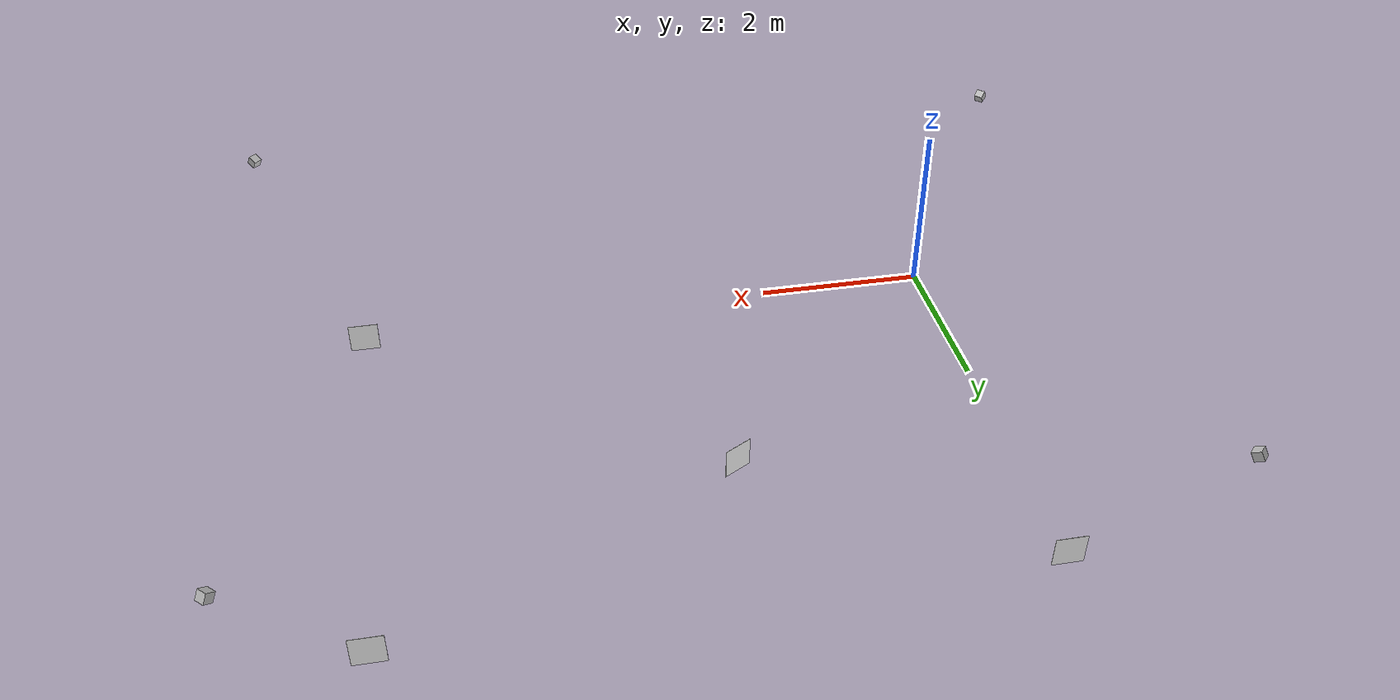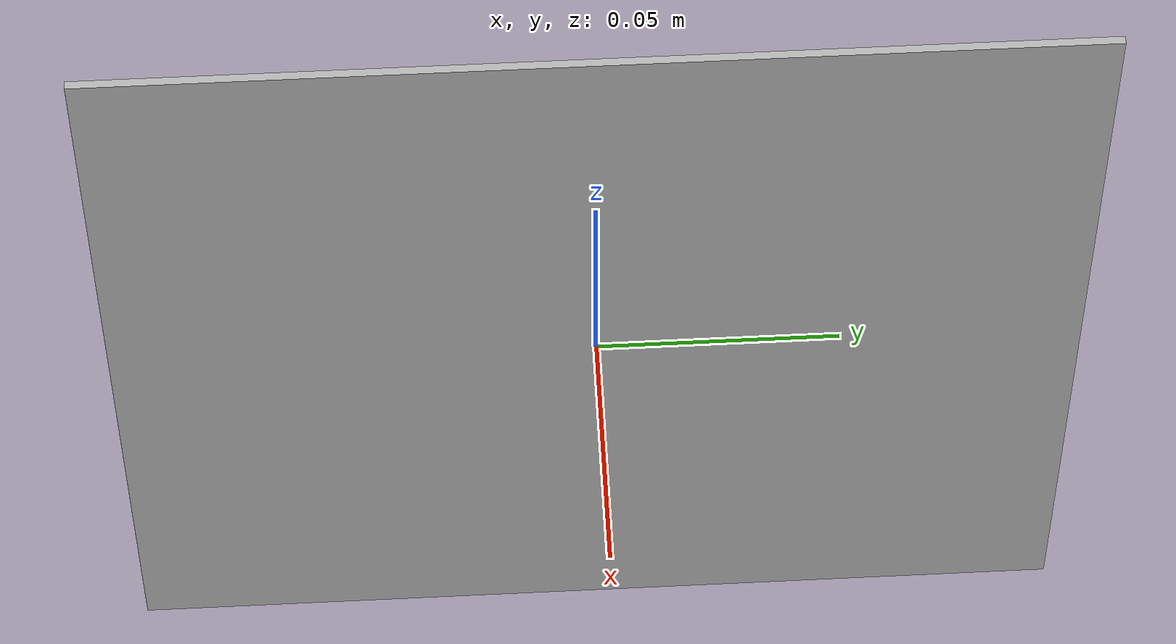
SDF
<?xml version="1.0"?>
<sdf version='1.7'>
  <world name='default'>
    <light name='user_directional_light_0' type='directional'>
      <pose>0 0 1 0 0 0</pose>
    </light>

    <!-- Cameras -->
    <!-- Based off https://www.arducam.com/product/arducam-high-quality-complete-usb-camera-bundle-12mp-1-2-3-inch-imx477-camera-module-with-6mm-cs-mount-lens-metal-enclosure-tripod-and-usb-cable-b0280/ -->
    <model name='camera1'>
      <static>true</static>
      <pose>-1 -1 2 0.0 0.5235987756 0.7853981634</pose>
      <link name='camera_link'>
        <visual name='visual'>
          <geometry>
            <box>
              <size>0.1 0.1 0.1</size>
            </box>
          </geometry>
        </visual>
        <sensor name='camera' type='camera'>
          <camera>
            <horizontal_fov>1.134464014</horizontal_fov>
            <image>
              <width>2592</width>
              <height>1944</height>
            </image>
            <clip>
              <near>0.1</near>
              <far>100</far>
            </clip>
            <lens>
              <type>equidistant</type>
              <scale_to_hfov>false</scale_to_hfov>
              <intrinsics>
                <fx>2034.31</fx>
                <fy>1525.73</fy>
                <cx>1296.00</cx>
                <cy>972.00</cy>
                <s>0</s>
              </intrinsics>
            </lens>
          </camera>
          <always_on>1</always_on>
          <update_rate>30.0</update_rate>
          <visualize>true</visualize>
          <plugin name="camera_controller" filename="libgazebo_ros_camera.so">
            <camera_name>camera1</camera_name>
            <hack_baseline>0</hack_baseline>
            <frame_name>camera_link</frame_name>
          </plugin>
        </sensor>
      </link>
    </model>

    <model name='camera2'>
      <static>true</static>
      <pose>8 -1 2 0.0 0.5235987756 2.35619449</pose>
      <link name='camera_link'>
        <visual name='visual'>
          <geometry>
            <box>
              <size>0.1 0.1 0.1</size>
            </box>
          </geometry>
        </visual>
        <sensor name='camera' type='camera'>
          <camera>
            <horizontal_fov>1.134464014</horizontal_fov>
            <image>
              <width>2592</width>
              <height>1944</height>
            </image>
            <clip>
              <near>0.1</near>
              <far>100</far>
            </clip>
            <lens>
              <type>equidistant</type>
              <scale_to_hfov>false</scale_to_hfov>
              <intrinsics>
                <fx>2034.31</fx>
                <fy>1525.73</fy>
                <cx>1296.00</cx>
                <cy>972.00</cy>
                <s>0</s>
              </intrinsics>
            </lens>
          </camera>
          <always_on>1</always_on>
          <update_rate>30.0</update_rate>
          <visualize>true</visualize>
          <plugin name="camera_controller" filename="libgazebo_ros_camera.so">
            <camera_name>camera2</camera_name>
            <hack_baseline>0</hack_baseline>
            <frame_name>camera_link</frame_name>
          </plugin>
        </sensor>
      </link>
    </model>

    <model name='camera3'>
      <static>true</static>
      <pose>8 6 2 0.0 0.5235987756 -2.35619449</pose>
      <link name='camera_link'>
        <visual name='visual'>
          <geometry>
            <box>
              <size>0.1 0.1 0.1</size>
            </box>
          </geometry>
        </visual>
        <sensor name='camera' type='camera'>
          <camera>
            <horizontal_fov>1.134464014</horizontal_fov>
            <image>
              <width>2592</width>
              <height>1944</height>
            </image>
            <clip>
              <near>0.1</near>
              <far>100</far>
            </clip>
            <lens>
              <type>equidistant</type>
              <scale_to_hfov>false</scale_to_hfov>
              <intrinsics>
                <fx>2034.31</fx>
                <fy>1525.73</fy>
                <cx>1296.00</cx>
                <cy>972.00</cy>
                <s>0</s>
              </intrinsics>
            </lens>
          </camera>
          <always_on>1</always_on>
          <update_rate>30.0</update_rate>
          <visualize>true</visualize>
          <plugin name="camera_controller" filename="libgazebo_ros_camera.so">
            <camera_name>camera3</camera_name>
            <hack_baseline>0</hack_baseline>
            <frame_name>camera_link</frame_name>
          </plugin>
        </sensor>
      </link>
    </model>

    <model name='camera4'>
      <static>true</static>
      <pose>-1 6 2 0.0 0.5235987756 -0.7853981634</pose>
      <link name='camera_link'>
        <visual name='visual'>
          <geometry>
            <box>
              <size>0.1 0.1 0.1</size>
            </box>
          </geometry>
        </visual>
        <sensor name='camera' type='camera'>
          <camera>
            <horizontal_fov>1.134464014</horizontal_fov>
            <image>
              <width>2592</width>
              <height>1944</height>
            </image>
            <clip>
              <near>0.1</near>
              <far>100</far>
            </clip>
            <lens>
              <type>equidistant</type>
              <scale_to_hfov>false</scale_to_hfov>
              <intrinsics>
                <fx>2034.31</fx>
                <fy>1525.73</fy>
                <cx>1296.00</cx>
                <cy>972.00</cy>
                <s>0</s>
              </intrinsics>
            </lens>
          </camera>
          <always_on>1</always_on>
          <update_rate>30.0</update_rate>
          <visualize>true</visualize>
          <plugin name="camera_controller" filename="libgazebo_ros_camera.so">
            <camera_name>camera4</camera_name>
            <hack_baseline>0</hack_baseline>
            <frame_name>camera_link</frame_name>
          </plugin>
        </sensor>
      </link>
    </model>

    <!-- Arena tags -->
    <include>
      <uri>model://aruco_marker_0</uri>
      <name>aruco_marker_0</name>
      <pose>0 0 0 0 0 0</pose>
    </include>

    <include>
      <uri>model://aruco_marker_1</uri>
      <name>aruco_marker_1</name>
      <pose>7 0 0 0 0 0</pose>
    </include>

    <include>
      <uri>model://aruco_marker_2</uri>
      <name>aruco_marker_2</name>
      <pose>7 5 0 0 0 0</pose>
    </include>

    <include>
      <uri>model://aruco_marker_3</uri>
      <name>aruco_marker_3</name>
      <pose>0 5 0 0 0 0</pose>
    </include>

    <!-- Robot tag -->
    <include>
      <uri>model://aruco_marker_4</uri>
      <name>aruco_marker_4</name>
      <pose>3 3 0 0 0 0.523598776</pose>
      <plugin name="ground_truth" filename="libgazebo_ros_p3d.so">
        <frame_name>map</frame_name>
        <body_name>marker</body_name>
        <topic_name>ground_truth</topic_name>
        <update_rate>30.0</update_rate>
      </plugin>
    </include>
  </world>
</sdf>

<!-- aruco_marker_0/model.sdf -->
<sdf version='1.6'>
  <model name='aruco_marker_0'>
    <link name='link_0'>
      <pose frame=''>0 0 0 0 -0 0</pose>
      <inertial>
        <mass>1</mass>
        <inertia>
          <ixx>0</ixx>
          <ixy>0</ixy>
          <ixz>0</ixz>
          <iyy>0</iyy>
          <iyz>0</iyz>
          <izz>0</izz>
        </inertia>
      </inertial>
      <visual name='visual'>
        <pose frame=''>0 0 0 0 -0 0</pose>
        <geometry>
          <mesh>
            <uri>file://isr-testbed/aruco_marker_0/aruco_marker_0.dae</uri>
            <scale>0.1 0.1 0.1</scale>
          </mesh>
        </geometry>
        <material>
          <lighting>1</lighting>
          <script>
            <uri>file://media/materials/scripts/gazebo.material</uri>
            <name>Gazebo/DepthMapVS</name>
          </script>
          <ambient>0.3 0.3 0.3 1</ambient>
          <diffuse>0.7 0.7 0.7 1</diffuse>
          <specular>0.01 0.01 0.01 1</specular>
          <emissive>0 0 0 1</emissive>
        </material>
        <transparency>0</transparency>
        <cast_shadows>1</cast_shadows>
      </visual>
      <collision name='collision'>
        <laser_retro>0</laser_retro>
        <max_contacts>10</max_contacts>
        <pose frame=''>0 0 0 0 -0 0</pose>
        <geometry>
          <mesh>
            <uri>file://isr-testbed/aruco_marker_0/aruco_marker_0.dae</uri>
            <scale>0.1 0.1 0.1</scale>
          </mesh>
        </geometry>
        <surface>
          <friction>
            <ode>
              <mu>1</mu>
              <mu2>1</mu2>
              <fdir1>0 0 0</fdir1>
              <slip1>0</slip1>
              <slip2>0</slip2>
            </ode>
            <torsional>
              <coefficient>1</coefficient>
              <patch_radius>0</patch_radius>
              <surface_radius>0</surface_radius>
              <use_patch_radius>1</use_patch_radius>
              <ode>
                <slip>0</slip>
              </ode>
            </torsional>
          </friction>
          <bounce>
            <restitution_coefficient>0</restitution_coefficient>
            <threshold>1e+06</threshold>
          </bounce>
          <contact>
            <collide_without_contact>0</collide_without_contact>
            <collide_without_contact_bitmask>1</collide_without_contact_bitmask>
            <collide_bitmask>1</collide_bitmask>
            <ode>
              <soft_cfm>0</soft_cfm>
              <soft_erp>0.2</soft_erp>
              <kp>1e+13</kp>
              <kd>1</kd>
              <max_vel>0.01</max_vel>
              <min_depth>0</min_depth>
            </ode>
            <bullet>
              <split_impulse>1</split_impulse>
              <split_impulse_penetration_threshold>-0.01</split_impulse_penetration_threshold>
              <soft_cfm>0</soft_cfm>
              <soft_erp>0.2</soft_erp>
              <kp>1e+13</kp>
              <kd>1</kd>
            </bullet>
          </contact>
        </surface>
      </collision>
    </link>
    <static>1</static>
    <allow_auto_disable>1</allow_auto_disable>
  </model>
</sdf>

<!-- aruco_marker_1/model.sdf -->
<sdf version="1.9">
  <model name="aruco_marker_1">
    <static>true</static>

    <link name="link">
      <visual name="front">
        <pose>0 0 0 0 0 0</pose>
        <geometry>
          <box>
            <size>0.35 0.002 0.35</size>
          </box>
        </geometry>

        <material>
          <ambient>1 1 1 1</ambient>
          <diffuse>1 1 1 1</diffuse>
          <specular>0.1 0.1 0.1 1</specular>
          <emissive>0 0 0 1</emissive>

          <pbr>
            <metal>
              <albedo_map>
                model://aruco/aruco_marker_1/materials/textures/marker_1.png
              </albedo_map>
              <emissive_map>
                model://aruco/aruco_marker_1/materials/textures/marker_1.png
              </emissive_map>
            </metal>
          </pbr>
        </material>
      </visual>

      <visual name="back">
        <pose>0 -0.002 0 0 0 3.1416</pose>
        <geometry>
          <box>
            <size>0.35 0.002 0.35</size>
          </box>
        </geometry>
        <material>
          <ambient>0 0 0 1</ambient>
          <diffuse>0 0 0 1</diffuse>
        </material>
      </visual>

    </link>

  </model>
</sdf>

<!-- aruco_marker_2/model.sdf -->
<sdf version="1.9">
  <model name="aruco_marker_2">
    <static>true</static>

    <link name="link">
      <visual name="front">
        <pose>0 0 0 0 0 0</pose>
        <geometry>
          <box>
            <size>0.35 0.002 0.35</size>
          </box>
        </geometry>

        <material>
          <ambient>1 1 1 1</ambient>
          <diffuse>1 1 1 1</diffuse>
          <specular>0.1 0.1 0.1 1</specular>
          <emissive>0 0 0 1</emissive>

          <pbr>
            <metal>
              <albedo_map>
                model://aruco/aruco_marker_2/materials/textures/marker_2.png
              </albedo_map>
              <emissive_map>
                model://aruco/aruco_marker_2/materials/textures/marker_2.png
              </emissive_map>
            </metal>
          </pbr>
        </material>
      </visual>

      <visual name="back">
        <pose>0 -0.002 0 0 0 3.1416</pose>
        <geometry>
          <box>
            <size>0.35 0.002 0.35</size>
          </box>
        </geometry>
        <material>
          <ambient>0 0 0 1</ambient>
          <diffuse>0 0 0 1</diffuse>
        </material>
      </visual>

    </link>

  </model>
</sdf>

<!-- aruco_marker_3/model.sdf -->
<sdf version="1.9">
  <model name="aruco_marker_3">
    <static>true</static>

    <link name="link">
      <visual name="front">
        <pose>0 0 0 0 0 0</pose>
        <geometry>
          <box>
            <size>0.35 0.002 0.35</size>
          </box>
        </geometry>

        <material>
          <ambient>1 1 1 1</ambient>
          <diffuse>1 1 1 1</diffuse>
          <specular>0.1 0.1 0.1 1</specular>
          <emissive>0 0 0 1</emissive>

          <pbr>
            <metal>
              <albedo_map>
                model://aruco/aruco_marker_3/materials/textures/marker_3.png
              </albedo_map>
              <emissive_map>
                model://aruco/aruco_marker_3/materials/textures/marker_3.png
              </emissive_map>
            </metal>
          </pbr>
        </material>
      </visual>

      <visual name="back">
        <pose>0 -0.002 0 0 0 3.1416</pose>
        <geometry>
          <box>
            <size>0.35 0.002 0.35</size>
          </box>
        </geometry>
        <material>
          <ambient>0 0 0 1</ambient>
          <diffuse>0 0 0 1</diffuse>
        </material>
      </visual>

    </link>

  </model>
</sdf>

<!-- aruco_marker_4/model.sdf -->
<sdf version="1.9">
  <model name="aruco_marker_4">
    <static>true</static>

    <link name="link">
      <visual name="front">
        <pose>0 0 0 0 0 0</pose>
        <geometry>
          <box>
            <size>0.35 0.002 0.35</size>
          </box>
        </geometry>

        <material>
          <ambient>1 1 1 1</ambient>
          <diffuse>1 1 1 1</diffuse>
          <specular>0.1 0.1 0.1 1</specular>
          <emissive>0 0 0 1</emissive>

          <pbr>
            <metal>
              <albedo_map>
                model://aruco/aruco_marker_4/materials/textures/marker_4.png
              </albedo_map>
              <emissive_map>
                model://aruco/aruco_marker_4/materials/textures/marker_4.png
              </emissive_map>
            </metal>
          </pbr>
        </material>
      </visual>

      <visual name="back">
        <pose>0 -0.002 0 0 0 3.1416</pose>
        <geometry>
          <box>
            <size>0.35 0.002 0.35</size>
          </box>
        </geometry>
        <material>
          <ambient>0 0 0 1</ambient>
          <diffuse>0 0 0 1</diffuse>
        </material>
      </visual>

    </link>

  </model>
</sdf>
